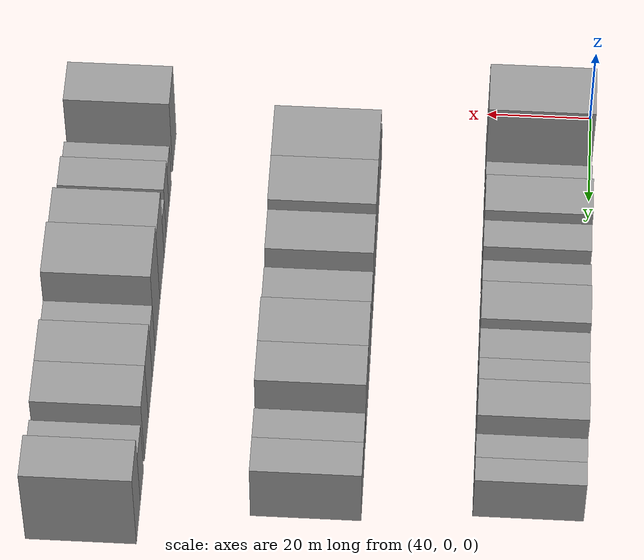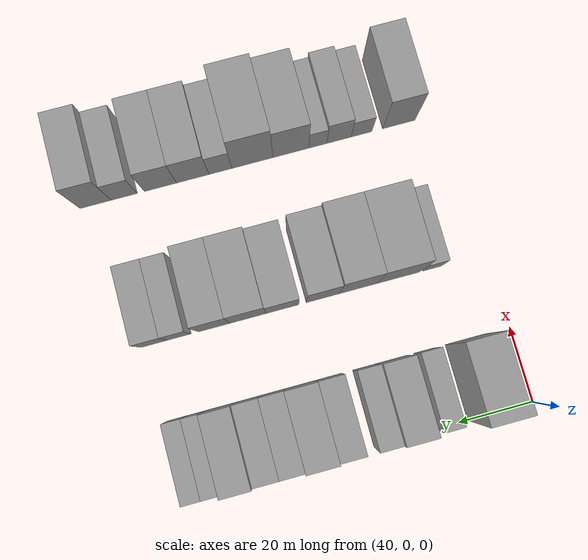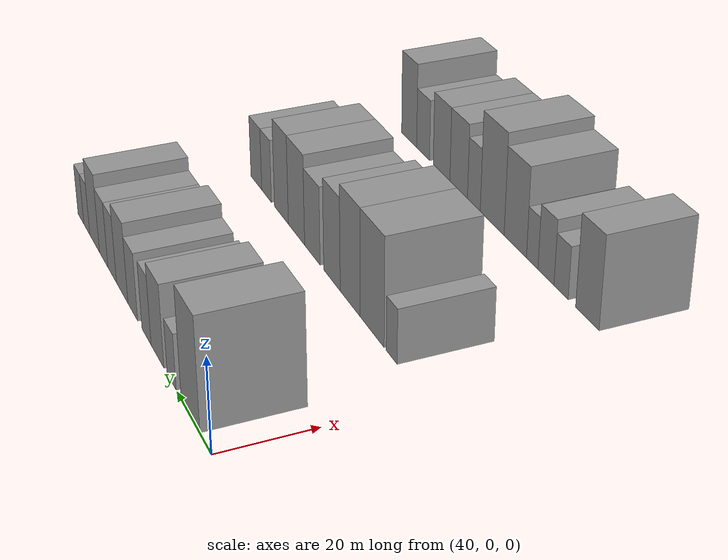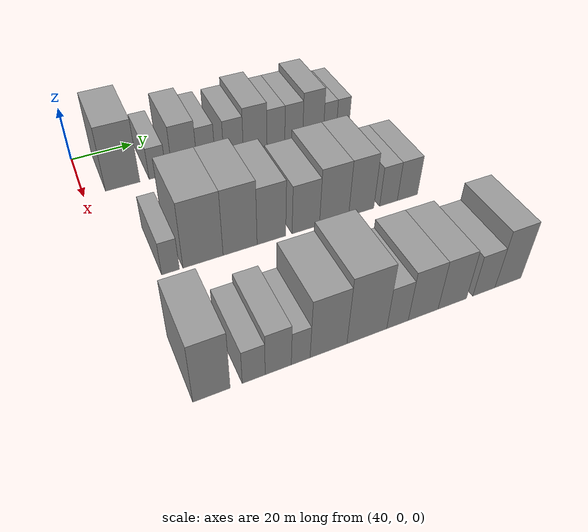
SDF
<sdf version="1.6">
 <world name="default">
  <model name="building_41">
   <static>1</static>
   <pose>50.0000 12.1011 0 0.000000 0.000000 0.000000</pose>
   <link name="link">
    <pose>0 0 12.00 0 0 0</pose>
    <collision name="collision"><geometry><box><size>20.0000 10.9155 24.0000</size></box></geometry></collision>
    <visual name="visual">
     <cast_shadows>0</cast_shadows>
     <geometry><box><size>20.0000 10.9155 24.0000</size></box></geometry>
     <material>
      <script>
       <uri>model://grey_wall/materials/scripts</uri>
       <uri>model://grey_wall/materials/textures</uri>
       <name>vrc/grey_wall</name>
      </script>
     </material>
    </visual>
   </link>
  </model>
  <model name="building_42">
   <static>1</static>
   <pose>50.0000 23.3495 0 0.000000 0.000000 0.000000</pose>
   <link name="link">
    <pose>0 0 6.00 0 0 0</pose>
    <collision name="collision"><geometry><box><size>20.0000 5.5812 12.0000</size></box></geometry></collision>
    <visual name="visual">
     <cast_shadows>0</cast_shadows>
     <geometry><box><size>20.0000 5.5812 12.0000</size></box></geometry>
     <material>
      <script>
       <uri>model://grey_wall/materials/scripts</uri>
       <uri>model://grey_wall/materials/textures</uri>
       <name>vrc/grey_wall</name>
      </script>
     </material>
    </visual>
   </link>
  </model>
  <model name="building_43">
   <static>1</static>
   <pose>50.0000 32.3095 0 0.000000 0.000000 0.000000</pose>
   <link name="link">
    <pose>0 0 9.00 0 0 0</pose>
    <collision name="collision"><geometry><box><size>20.0000 8.3389 18.0000</size></box></geometry></collision>
    <visual name="visual">
     <cast_shadows>0</cast_shadows>
     <geometry><box><size>20.0000 8.3389 18.0000</size></box></geometry>
     <material>
      <script>
       <uri>model://grey_wall/materials/scripts</uri>
       <uri>model://grey_wall/materials/textures</uri>
       <name>vrc/grey_wall</name>
      </script>
     </material>
    </visual>
   </link>
  </model>
  <model name="building_44">
   <static>1</static>
   <pose>50.0000 39.5402 0 0.000000 0.000000 0.000000</pose>
   <link name="link">
    <pose>0 0 7.50 0 0 0</pose>
    <collision name="collision"><geometry><box><size>20.0000 6.1225 15.0000</size></box></geometry></collision>
    <visual name="visual">
     <cast_shadows>0</cast_shadows>
     <geometry><box><size>20.0000 6.1225 15.0000</size></box></geometry>
     <material>
      <script>
       <uri>model://grey_wall/materials/scripts</uri>
       <uri>model://grey_wall/materials/textures</uri>
       <name>vrc/grey_wall</name>
      </script>
     </material>
    </visual>
   </link>
  </model>
  <model name="building_45">
   <static>1</static>
   <pose>50.0000 49.0186 0 0.000000 0.000000 0.000000</pose>
   <link name="link">
    <pose>0 0 7.50 0 0 0</pose>
    <collision name="collision"><geometry><box><size>20.0000 6.8342 15.0000</size></box></geometry></collision>
    <visual name="visual">
     <cast_shadows>0</cast_shadows>
     <geometry><box><size>20.0000 6.8342 15.0000</size></box></geometry>
     <material>
      <script>
       <uri>model://grey_wall/materials/scripts</uri>
       <uri>model://grey_wall/materials/textures</uri>
       <name>vrc/grey_wall</name>
      </script>
     </material>
    </visual>
   </link>
  </model>
  <model name="building_46">
   <static>1</static>
   <pose>50.0000 56.6620 0 0.000000 0.000000 0.000000</pose>
   <link name="link">
    <pose>0 0 9.00 0 0 0</pose>
    <collision name="collision"><geometry><box><size>20.0000 8.4526 18.0000</size></box></geometry></collision>
    <visual name="visual">
     <cast_shadows>0</cast_shadows>
     <geometry><box><size>20.0000 8.4526 18.0000</size></box></geometry>
     <material>
      <script>
       <uri>model://grey_wall/materials/scripts</uri>
       <uri>model://grey_wall/materials/textures</uri>
       <name>vrc/grey_wall</name>
      </script>
     </material>
    </visual>
   </link>
  </model>
  <model name="building_47">
   <static>1</static>
   <pose>50.0000 64.1325 0 0.000000 0.000000 0.000000</pose>
   <link name="link">
    <pose>0 0 7.50 0 0 0</pose>
    <collision name="collision"><geometry><box><size>20.0000 6.4883 15.0000</size></box></geometry></collision>
    <visual name="visual">
     <cast_shadows>0</cast_shadows>
     <geometry><box><size>20.0000 6.4883 15.0000</size></box></geometry>
     <material>
      <script>
       <uri>model://grey_wall/materials/scripts</uri>
       <uri>model://grey_wall/materials/textures</uri>
       <name>vrc/grey_wall</name>
      </script>
     </material>
    </visual>
   </link>
  </model>
  <model name="building_48">
   <static>1</static>
   <pose>50.0000 70.6933 0 0.000000 0.000000 0.000000</pose>
   <link name="link">
    <pose>0 0 7.50 0 0 0</pose>
    <collision name="collision"><geometry><box><size>20.0000 6.6332 15.0000</size></box></geometry></collision>
    <visual name="visual">
     <cast_shadows>0</cast_shadows>
     <geometry><box><size>20.0000 6.6332 15.0000</size></box></geometry>
     <material>
      <script>
       <uri>model://grey_wall/materials/scripts</uri>
       <uri>model://grey_wall/materials/textures</uri>
       <name>vrc/grey_wall</name>
      </script>
     </material>
    </visual>
   </link>
  </model>
  <model name="building_49">
   <static>1</static>
   <pose>50.0000 77.9368 0 0.000000 0.000000 0.000000</pose>
   <link name="link">
    <pose>0 0 9.00 0 0 0</pose>
    <collision name="collision"><geometry><box><size>20.0000 7.8539 18.0000</size></box></geometry></collision>
    <visual name="visual">
     <cast_shadows>0</cast_shadows>
     <geometry><box><size>20.0000 7.8539 18.0000</size></box></geometry>
     <material>
      <script>
       <uri>model://grey_wall/materials/scripts</uri>
       <uri>model://grey_wall/materials/textures</uri>
       <name>vrc/grey_wall</name>
      </script>
     </material>
    </visual>
   </link>
  </model>
  <model name="building_50">
   <static>1</static>
   <pose>50.0000 84.3722 0 0.000000 0.000000 0.000000</pose>
   <link name="link">
    <pose>0 0 6.00 0 0 0</pose>
    <collision name="collision"><geometry><box><size>20.0000 5.0170 12.0000</size></box></geometry></collision>
    <visual name="visual">
     <cast_shadows>0</cast_shadows>
     <geometry><box><size>20.0000 5.0170 12.0000</size></box></geometry>
     <material>
      <script>
       <uri>model://grey_wall/materials/scripts</uri>
       <uri>model://grey_wall/materials/textures</uri>
       <name>vrc/grey_wall</name>
      </script>
     </material>
    </visual>
   </link>
  </model>
  <model name="building_51">
   <static>1</static>
   <pose>50.0000 89.3582 0 0.000000 0.000000 0.000000</pose>
   <link name="link">
    <pose>0 0 6.00 0 0 0</pose>
    <collision name="collision"><geometry><box><size>20.0000 4.9549 12.0000</size></box></geometry></collision>
    <visual name="visual">
     <cast_shadows>0</cast_shadows>
     <geometry><box><size>20.0000 4.9549 12.0000</size></box></geometry>
     <material>
      <script>
       <uri>model://grey_wall/materials/scripts</uri>
       <uri>model://grey_wall/materials/textures</uri>
       <name>vrc/grey_wall</name>
      </script>
     </material>
    </visual>
   </link>
  </model>
  <model name="building_132">
   <static>1</static>
   <pose>90.0000 15.1945 0 0.000000 0.000000 0.000000</pose>
   <link name="link">
    <pose>0 0 6.00 0 0 0</pose>
    <collision name="collision"><geometry><box><size>20.0000 5.0530 12.0000</size></box></geometry></collision>
    <visual name="visual">
     <cast_shadows>0</cast_shadows>
     <geometry><box><size>20.0000 5.0530 12.0000</size></box></geometry>
     <material>
      <script>
       <uri>model://grey_wall/materials/scripts</uri>
       <uri>model://grey_wall/materials/textures</uri>
       <name>vrc/grey_wall</name>
      </script>
     </material>
    </visual>
   </link>
  </model>
  <model name="building_133">
   <static>1</static>
   <pose>90.0000 24.5679 0 0.000000 0.000000 0.000000</pose>
   <link name="link">
    <pose>0 0 12.00 0 0 0</pose>
    <collision name="collision"><geometry><box><size>20.0000 11.6937 24.0000</size></box></geometry></collision>
    <visual name="visual">
     <cast_shadows>0</cast_shadows>
     <geometry><box><size>20.0000 11.6937 24.0000</size></box></geometry>
     <material>
      <script>
       <uri>model://grey_wall/materials/scripts</uri>
       <uri>model://grey_wall/materials/textures</uri>
       <name>vrc/grey_wall</name>
      </script>
     </material>
    </visual>
   </link>
  </model>
  <model name="building_134">
   <static>1</static>
   <pose>90.0000 35.5404 0 0.000000 0.000000 0.000000</pose>
   <link name="link">
    <pose>0 0 12.00 0 0 0</pose>
    <collision name="collision"><geometry><box><size>20.0000 10.2514 24.0000</size></box></geometry></collision>
    <visual name="visual">
     <cast_shadows>0</cast_shadows>
     <geometry><box><size>20.0000 10.2514 24.0000</size></box></geometry>
     <material>
      <script>
       <uri>model://grey_wall/materials/scripts</uri>
       <uri>model://grey_wall/materials/textures</uri>
       <name>vrc/grey_wall</name>
      </script>
     </material>
    </visual>
   </link>
  </model>
  <model name="building_135">
   <static>1</static>
   <pose>90.0000 45.1159 0 0.000000 0.000000 0.000000</pose>
   <link name="link">
    <pose>0 0 10.50 0 0 0</pose>
    <collision name="collision"><geometry><box><size>20.0000 8.8995 21.0000</size></box></geometry></collision>
    <visual name="visual">
     <cast_shadows>0</cast_shadows>
     <geometry><box><size>20.0000 8.8995 21.0000</size></box></geometry>
     <material>
      <script>
       <uri>model://grey_wall/materials/scripts</uri>
       <uri>model://grey_wall/materials/textures</uri>
       <name>vrc/grey_wall</name>
      </script>
     </material>
    </visual>
   </link>
  </model>
  <model name="building_136">
   <static>1</static>
   <pose>90.0000 55.9717 0 0.000000 0.000000 0.000000</pose>
   <link name="link">
    <pose>0 0 9.00 0 0 0</pose>
    <collision name="collision"><geometry><box><size>20.0000 8.8121 18.0000</size></box></geometry></collision>
    <visual name="visual">
     <cast_shadows>0</cast_shadows>
     <geometry><box><size>20.0000 8.8121 18.0000</size></box></geometry>
     <material>
      <script>
       <uri>model://grey_wall/materials/scripts</uri>
       <uri>model://grey_wall/materials/textures</uri>
       <name>vrc/grey_wall</name>
      </script>
     </material>
    </visual>
   </link>
  </model>
  <model name="building_137">
   <static>1</static>
   <pose>90.0000 65.1963 0 0.000000 0.000000 0.000000</pose>
   <link name="link">
    <pose>0 0 10.50 0 0 0</pose>
    <collision name="collision"><geometry><box><size>20.0000 9.6371 21.0000</size></box></geometry></collision>
    <visual name="visual">
     <cast_shadows>0</cast_shadows>
     <geometry><box><size>20.0000 9.6371 21.0000</size></box></geometry>
     <material>
      <script>
       <uri>model://grey_wall/materials/scripts</uri>
       <uri>model://grey_wall/materials/textures</uri>
       <name>vrc/grey_wall</name>
      </script>
     </material>
    </visual>
   </link>
  </model>
  <model name="building_138">
   <static>1</static>
   <pose>90.0000 74.2967 0 0.000000 0.000000 0.000000</pose>
   <link name="link">
    <pose>0 0 10.50 0 0 0</pose>
    <collision name="collision"><geometry><box><size>20.0000 8.5638 21.0000</size></box></geometry></collision>
    <visual name="visual">
     <cast_shadows>0</cast_shadows>
     <geometry><box><size>20.0000 8.5638 21.0000</size></box></geometry>
     <material>
      <script>
       <uri>model://grey_wall/materials/scripts</uri>
       <uri>model://grey_wall/materials/textures</uri>
       <name>vrc/grey_wall</name>
      </script>
     </material>
    </visual>
   </link>
  </model>
  <model name="building_139">
   <static>1</static>
   <pose>90.0000 83.6740 0 0.000000 0.000000 0.000000</pose>
   <link name="link">
    <pose>0 0 7.50 0 0 0</pose>
    <collision name="collision"><geometry><box><size>20.0000 6.1907 15.0000</size></box></geometry></collision>
    <visual name="visual">
     <cast_shadows>0</cast_shadows>
     <geometry><box><size>20.0000 6.1907 15.0000</size></box></geometry>
     <material>
      <script>
       <uri>model://grey_wall/materials/scripts</uri>
       <uri>model://grey_wall/materials/textures</uri>
       <name>vrc/grey_wall</name>
      </script>
     </material>
    </visual>
   </link>
  </model>
  <model name="building_140">
   <static>1</static>
   <pose>90.0000 90.3516 0 0.000000 0.000000 0.000000</pose>
   <link name="link">
    <pose>0 0 7.50 0 0 0</pose>
    <collision name="collision"><geometry><box><size>20.0000 7.1645 15.0000</size></box></geometry></collision>
    <visual name="visual">
     <cast_shadows>0</cast_shadows>
     <geometry><box><size>20.0000 7.1645 15.0000</size></box></geometry>
     <material>
      <script>
       <uri>model://grey_wall/materials/scripts</uri>
       <uri>model://grey_wall/materials/textures</uri>
       <name>vrc/grey_wall</name>
      </script>
     </material>
    </visual>
   </link>
  </model>
  <model name="building_210">
   <static>1</static>
   <pose>130.0000 12.6894 0 0.000000 0.000000 0.000000</pose>
   <link name="link">
    <pose>0 0 10.50 0 0 0</pose>
    <collision name="collision"><geometry><box><size>20.0000 9.1360 21.0000</size></box></geometry></collision>
    <visual name="visual">
     <cast_shadows>0</cast_shadows>
     <geometry><box><size>20.0000 9.1360 21.0000</size></box></geometry>
     <material>
      <script>
       <uri>model://grey_wall/materials/scripts</uri>
       <uri>model://grey_wall/materials/textures</uri>
       <name>vrc/grey_wall</name>
      </script>
     </material>
    </visual>
   </link>
  </model>
  <model name="building_211">
   <static>1</static>
   <pose>130.0000 23.1674 0 0.000000 0.000000 0.000000</pose>
   <link name="link">
    <pose>0 0 6.00 0 0 0</pose>
    <collision name="collision"><geometry><box><size>20.0000 5.8200 12.0000</size></box></geometry></collision>
    <visual name="visual">
     <cast_shadows>0</cast_shadows>
     <geometry><box><size>20.0000 5.8200 12.0000</size></box></geometry>
     <material>
      <script>
       <uri>model://grey_wall/materials/scripts</uri>
       <uri>model://grey_wall/materials/textures</uri>
       <name>vrc/grey_wall</name>
      </script>
     </material>
    </visual>
   </link>
  </model>
  <model name="building_212">
   <static>1</static>
   <pose>130.0000 29.4724 0 0.000000 0.000000 0.000000</pose>
   <link name="link">
    <pose>0 0 7.50 0 0 0</pose>
    <collision name="collision"><geometry><box><size>20.0000 6.7900 15.0000</size></box></geometry></collision>
    <visual name="visual">
     <cast_shadows>0</cast_shadows>
     <geometry><box><size>20.0000 6.7900 15.0000</size></box></geometry>
     <material>
      <script>
       <uri>model://grey_wall/materials/scripts</uri>
       <uri>model://grey_wall/materials/textures</uri>
       <name>vrc/grey_wall</name>
      </script>
     </material>
    </visual>
   </link>
  </model>
  <model name="building_213">
   <static>1</static>
   <pose>130.0000 35.3639 0 0.000000 0.000000 0.000000</pose>
   <link name="link">
    <pose>0 0 6.00 0 0 0</pose>
    <collision name="collision"><geometry><box><size>20.0000 4.9930 12.0000</size></box></geometry></collision>
    <visual name="visual">
     <cast_shadows>0</cast_shadows>
     <geometry><box><size>20.0000 4.9930 12.0000</size></box></geometry>
     <material>
      <script>
       <uri>model://grey_wall/materials/scripts</uri>
       <uri>model://grey_wall/materials/textures</uri>
       <name>vrc/grey_wall</name>
      </script>
     </material>
    </visual>
   </link>
  </model>
  <model name="building_214">
   <static>1</static>
   <pose>130.0000 42.8924 0 0.000000 0.000000 0.000000</pose>
   <link name="link">
    <pose>0 0 10.50 0 0 0</pose>
    <collision name="collision"><geometry><box><size>20.0000 10.0639 21.0000</size></box></geometry></collision>
    <visual name="visual">
     <cast_shadows>0</cast_shadows>
     <geometry><box><size>20.0000 10.0639 21.0000</size></box></geometry>
     <material>
      <script>
       <uri>model://grey_wall/materials/scripts</uri>
       <uri>model://grey_wall/materials/textures</uri>
       <name>vrc/grey_wall</name>
      </script>
     </material>
    </visual>
   </link>
  </model>
  <model name="building_215">
   <static>1</static>
   <pose>130.0000 53.5771 0 0.000000 0.000000 0.000000</pose>
   <link name="link">
    <pose>0 0 12.00 0 0 0</pose>
    <collision name="collision"><geometry><box><size>20.0000 11.3055 24.0000</size></box></geometry></collision>
    <visual name="visual">
     <cast_shadows>0</cast_shadows>
     <geometry><box><size>20.0000 11.3055 24.0000</size></box></geometry>
     <material>
      <script>
       <uri>model://grey_wall/materials/scripts</uri>
       <uri>model://grey_wall/materials/textures</uri>
       <name>vrc/grey_wall</name>
      </script>
     </material>
    </visual>
   </link>
  </model>
  <model name="building_216">
   <static>1</static>
   <pose>130.0000 62.3815 0 0.000000 0.000000 0.000000</pose>
   <link name="link">
    <pose>0 0 7.50 0 0 0</pose>
    <collision name="collision"><geometry><box><size>20.0000 6.3035 15.0000</size></box></geometry></collision>
    <visual name="visual">
     <cast_shadows>0</cast_shadows>
     <geometry><box><size>20.0000 6.3035 15.0000</size></box></geometry>
     <material>
      <script>
       <uri>model://grey_wall/materials/scripts</uri>
       <uri>model://grey_wall/materials/textures</uri>
       <name>vrc/grey_wall</name>
      </script>
     </material>
    </visual>
   </link>
  </model>
  <model name="building_217">
   <static>1</static>
   <pose>130.0000 70.0217 0 0.000000 0.000000 0.000000</pose>
   <link name="link">
    <pose>0 0 9.00 0 0 0</pose>
    <collision name="collision"><geometry><box><size>20.0000 8.9768 18.0000</size></box></geometry></collision>
    <visual name="visual">
     <cast_shadows>0</cast_shadows>
     <geometry><box><size>20.0000 8.9768 18.0000</size></box></geometry>
     <material>
      <script>
       <uri>model://grey_wall/materials/scripts</uri>
       <uri>model://grey_wall/materials/textures</uri>
       <name>vrc/grey_wall</name>
      </script>
     </material>
    </visual>
   </link>
  </model>
  <model name="building_218">
   <static>1</static>
   <pose>130.0000 78.9306 0 0.000000 0.000000 0.000000</pose>
   <link name="link">
    <pose>0 0 9.00 0 0 0</pose>
    <collision name="collision"><geometry><box><size>20.0000 8.8411 18.0000</size></box></geometry></collision>
    <visual name="visual">
     <cast_shadows>0</cast_shadows>
     <geometry><box><size>20.0000 8.8411 18.0000</size></box></geometry>
     <material>
      <script>
       <uri>model://grey_wall/materials/scripts</uri>
       <uri>model://grey_wall/materials/textures</uri>
       <name>vrc/grey_wall</name>
      </script>
     </material>
    </visual>
   </link>
  </model>
  <model name="building_219">
   <static>1</static>
   <pose>130.0000 88.9022 0 0.000000 0.000000 0.000000</pose>
   <link name="link">
    <pose>0 0 7.50 0 0 0</pose>
    <collision name="collision"><geometry><box><size>20.0000 7.1022 15.0000</size></box></geometry></collision>
    <visual name="visual">
     <cast_shadows>0</cast_shadows>
     <geometry><box><size>20.0000 7.1022 15.0000</size></box></geometry>
     <material>
      <script>
       <uri>model://grey_wall/materials/scripts</uri>
       <uri>model://grey_wall/materials/textures</uri>
       <name>vrc/grey_wall</name>
      </script>
     </material>
    </visual>
   </link>
  </model>
  <model name="building_220">
   <static>1</static>
   <pose>130.0000 96.7344 0 0.000000 0.000000 0.000000</pose>
   <link name="link">
    <pose>0 0 10.50 0 0 0</pose>
    <collision name="collision"><geometry><box><size>20.0000 8.5622 21.0000</size></box></geometry></collision>
    <visual name="visual">
     <cast_shadows>0</cast_shadows>
     <geometry><box><size>20.0000 8.5622 21.0000</size></box></geometry>
     <material>
      <script>
       <uri>model://grey_wall/materials/scripts</uri>
       <uri>model://grey_wall/materials/textures</uri>
       <name>vrc/grey_wall</name>
      </script>
     </material>
    </visual>
   </link>
  </model>
 </world>
</sdf>
